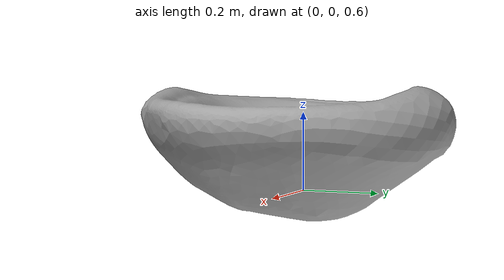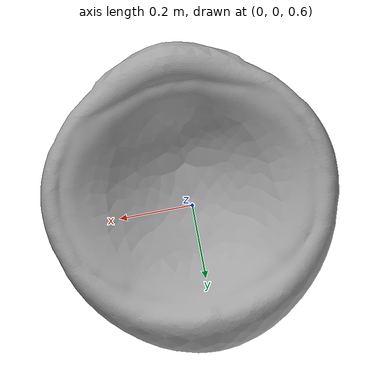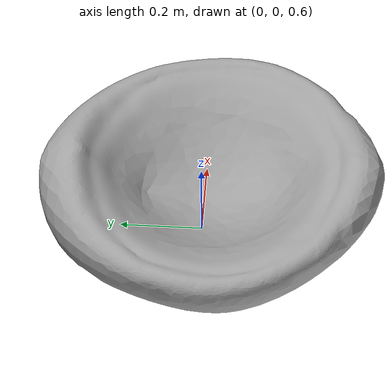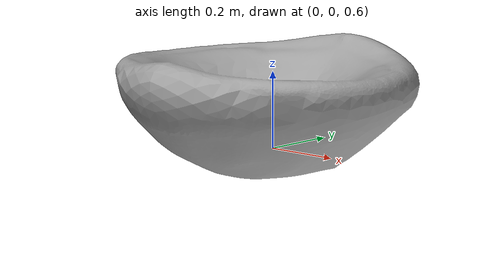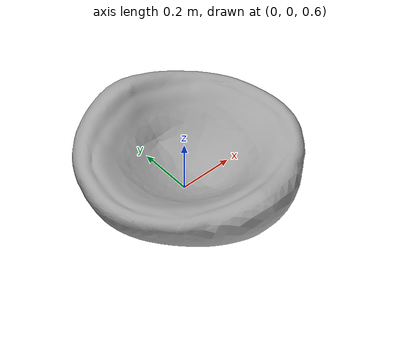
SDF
<?xml version="1.0" ?>
<sdf version="1.5">
  <model name="nest1">
    <static>true</static>
    <link name="link">
      <pose>0 0 0 0 0 0</pose>

      <visual name="visual">
        <cast_shadows>false</cast_shadows>
        <geometry>
          <mesh>
            <uri>model://nest1/meshes/Nest.dae</uri>
            <scale> 0.25 0.25 0.25 </scale>
          </mesh>
        </geometry>
      </visual>

      <collision name="collision">
        <geometry>
          <mesh>
            <uri>model://nest1/meshes/Nest.dae</uri>
          </mesh>
        </geometry>
      </collision>

    </link>
  </model>
</sdf>
